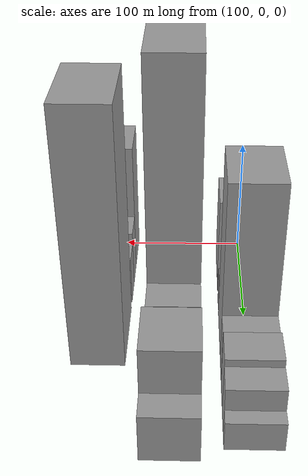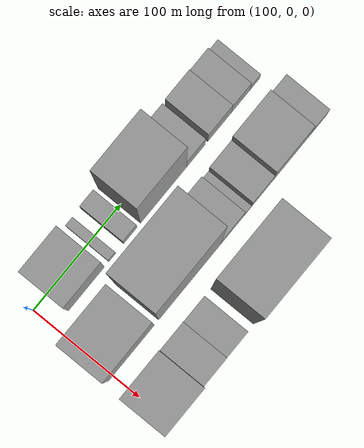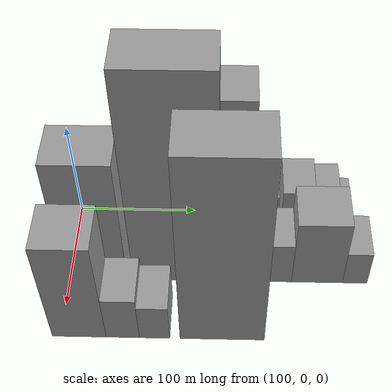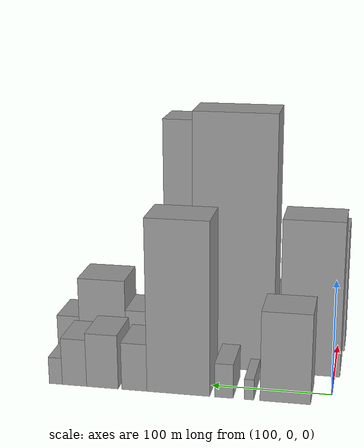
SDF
<sdf version="1.6">
 <world name="default">
  <model name="building_27">
   <static>1</static>
   <pose>100.0000 36.4722 0 0.000000 0.000000 0.000000</pose>
   <link name="link">
    <pose>0 0 39.00 0 0 0</pose>
    <collision name="collision"><geometry><box><size>40.0000 41.1924 78.0000</size></box></geometry></collision>
    <visual name="visual">
     <cast_shadows>0</cast_shadows>
     <geometry><box><size>40.0000 41.1924 78.0000</size></box></geometry>
     <material>
      <script>
       <uri>model://grey_wall/materials/scripts</uri>
       <uri>model://grey_wall/materials/textures</uri>
       <name>vrc/grey_wall</name>
      </script>
     </material>
    </visual>
   </link>
  </model>
  <model name="building_28">
   <static>1</static>
   <pose>100.0000 66.0425 0 0.000000 0.000000 0.000000</pose>
   <link name="link">
    <pose>0 0 9.00 0 0 0</pose>
    <collision name="collision"><geometry><box><size>40.0000 7.9484 18.0000</size></box></geometry></collision>
    <visual name="visual">
     <cast_shadows>0</cast_shadows>
     <geometry><box><size>40.0000 7.9484 18.0000</size></box></geometry>
     <material>
      <script>
       <uri>model://grey_wall/materials/scripts</uri>
       <uri>model://grey_wall/materials/textures</uri>
       <name>vrc/grey_wall</name>
      </script>
     </material>
    </visual>
   </link>
  </model>
  <model name="building_29">
   <static>1</static>
   <pose>100.0000 86.7288 0 0.000000 0.000000 0.000000</pose>
   <link name="link">
    <pose>0 0 15.00 0 0 0</pose>
    <collision name="collision"><geometry><box><size>40.0000 15.4241 30.0000</size></box></geometry></collision>
    <visual name="visual">
     <cast_shadows>0</cast_shadows>
     <geometry><box><size>40.0000 15.4241 30.0000</size></box></geometry>
     <material>
      <script>
       <uri>model://grey_wall/materials/scripts</uri>
       <uri>model://grey_wall/materials/textures</uri>
       <name>vrc/grey_wall</name>
      </script>
     </material>
    </visual>
   </link>
  </model>
  <model name="building_30">
   <static>1</static>
   <pose>100.0000 124.8338 0 0.000000 0.000000 0.000000</pose>
   <link name="link">
    <pose>0 0 75.00 0 0 0</pose>
    <collision name="collision"><geometry><box><size>40.0000 52.7860 150.0000</size></box></geometry></collision>
    <visual name="visual">
     <cast_shadows>0</cast_shadows>
     <geometry><box><size>40.0000 52.7860 150.0000</size></box></geometry>
     <material>
      <script>
       <uri>model://grey_wall/materials/scripts</uri>
       <uri>model://grey_wall/materials/textures</uri>
       <name>vrc/grey_wall</name>
      </script>
     </material>
    </visual>
   </link>
  </model>
  <model name="building_31">
   <static>1</static>
   <pose>100.0000 161.9882 0 0.000000 0.000000 0.000000</pose>
   <link name="link">
    <pose>0 0 21.00 0 0 0</pose>
    <collision name="collision"><geometry><box><size>40.0000 21.5227 42.0000</size></box></geometry></collision>
    <visual name="visual">
     <cast_shadows>0</cast_shadows>
     <geometry><box><size>40.0000 21.5227 42.0000</size></box></geometry>
     <material>
      <script>
       <uri>model://grey_wall/materials/scripts</uri>
       <uri>model://grey_wall/materials/textures</uri>
       <name>vrc/grey_wall</name>
      </script>
     </material>
    </visual>
   </link>
  </model>
  <model name="building_32">
   <static>1</static>
   <pose>100.0000 189.4011 0 0.000000 0.000000 0.000000</pose>
   <link name="link">
    <pose>0 0 24.00 0 0 0</pose>
    <collision name="collision"><geometry><box><size>40.0000 27.3031 48.0000</size></box></geometry></collision>
    <visual name="visual">
     <cast_shadows>0</cast_shadows>
     <geometry><box><size>40.0000 27.3031 48.0000</size></box></geometry>
     <material>
      <script>
       <uri>model://grey_wall/materials/scripts</uri>
       <uri>model://grey_wall/materials/textures</uri>
       <name>vrc/grey_wall</name>
      </script>
     </material>
    </visual>
   </link>
  </model>
  <model name="building_33">
   <static>1</static>
   <pose>100.0000 213.6342 0 0.000000 0.000000 0.000000</pose>
   <link name="link">
    <pose>0 0 21.00 0 0 0</pose>
    <collision name="collision"><geometry><box><size>40.0000 21.1630 42.0000</size></box></geometry></collision>
    <visual name="visual">
     <cast_shadows>0</cast_shadows>
     <geometry><box><size>40.0000 21.1630 42.0000</size></box></geometry>
     <material>
      <script>
       <uri>model://grey_wall/materials/scripts</uri>
       <uri>model://grey_wall/materials/textures</uri>
       <name>vrc/grey_wall</name>
      </script>
     </material>
    </visual>
   </link>
  </model>
  <model name="building_34">
   <static>1</static>
   <pose>100.0000 229.9059 0 0.000000 0.000000 0.000000</pose>
   <link name="link">
    <pose>0 0 12.00 0 0 0</pose>
    <collision name="collision"><geometry><box><size>40.0000 11.3804 24.0000</size></box></geometry></collision>
    <visual name="visual">
     <cast_shadows>0</cast_shadows>
     <geometry><box><size>40.0000 11.3804 24.0000</size></box></geometry>
     <material>
      <script>
       <uri>model://grey_wall/materials/scripts</uri>
       <uri>model://grey_wall/materials/textures</uri>
       <name>vrc/grey_wall</name>
      </script>
     </material>
    </visual>
   </link>
  </model>
  <model name="building_79">
   <static>1</static>
   <pose>155.0000 21.2462 0 0.000000 0.000000 0.000000</pose>
   <link name="link">
    <pose>0 0 69.00 0 0 0</pose>
    <collision name="collision"><geometry><box><size>40.0000 52.1251 138.0000</size></box></geometry></collision>
    <visual name="visual">
     <cast_shadows>0</cast_shadows>
     <geometry><box><size>40.0000 52.1251 138.0000</size></box></geometry>
     <material>
      <script>
       <uri>model://grey_wall/materials/scripts</uri>
       <uri>model://grey_wall/materials/textures</uri>
       <name>vrc/grey_wall</name>
      </script>
     </material>
    </visual>
   </link>
  </model>
  <model name="building_80">
   <static>1</static>
   <pose>155.0000 87.5259 0 0.000000 0.000000 0.000000</pose>
   <link name="link">
    <pose>0 0 112.50 0 0 0</pose>
    <collision name="collision"><geometry><box><size>40.0000 70.4342 225.0000</size></box></geometry></collision>
    <visual name="visual">
     <cast_shadows>0</cast_shadows>
     <geometry><box><size>40.0000 70.4342 225.0000</size></box></geometry>
     <material>
      <script>
       <uri>model://grey_wall/materials/scripts</uri>
       <uri>model://grey_wall/materials/textures</uri>
       <name>vrc/grey_wall</name>
      </script>
     </material>
    </visual>
   </link>
  </model>
  <model name="building_81">
   <static>1</static>
   <pose>155.0000 136.2333 0 0.000000 0.000000 0.000000</pose>
   <link name="link">
    <pose>0 0 24.00 0 0 0</pose>
    <collision name="collision"><geometry><box><size>40.0000 26.9808 48.0000</size></box></geometry></collision>
    <visual name="visual">
     <cast_shadows>0</cast_shadows>
     <geometry><box><size>40.0000 26.9808 48.0000</size></box></geometry>
     <material>
      <script>
       <uri>model://grey_wall/materials/scripts</uri>
       <uri>model://grey_wall/materials/textures</uri>
       <name>vrc/grey_wall</name>
      </script>
     </material>
    </visual>
   </link>
  </model>
  <model name="building_82">
   <static>1</static>
   <pose>155.0000 154.0261 0 0.000000 0.000000 0.000000</pose>
   <link name="link">
    <pose>0 0 9.00 0 0 0</pose>
    <collision name="collision"><geometry><box><size>40.0000 8.6049 18.0000</size></box></geometry></collision>
    <visual name="visual">
     <cast_shadows>0</cast_shadows>
     <geometry><box><size>40.0000 8.6049 18.0000</size></box></geometry>
     <material>
      <script>
       <uri>model://grey_wall/materials/scripts</uri>
       <uri>model://grey_wall/materials/textures</uri>
       <name>vrc/grey_wall</name>
      </script>
     </material>
    </visual>
   </link>
  </model>
  <model name="building_83">
   <static>1</static>
   <pose>155.0000 170.7109 0 0.000000 0.000000 0.000000</pose>
   <link name="link">
    <pose>0 0 24.00 0 0 0</pose>
    <collision name="collision"><geometry><box><size>40.0000 24.7646 48.0000</size></box></geometry></collision>
    <visual name="visual">
     <cast_shadows>0</cast_shadows>
     <geometry><box><size>40.0000 24.7646 48.0000</size></box></geometry>
     <material>
      <script>
       <uri>model://grey_wall/materials/scripts</uri>
       <uri>model://grey_wall/materials/textures</uri>
       <name>vrc/grey_wall</name>
      </script>
     </material>
    </visual>
   </link>
  </model>
  <model name="building_84">
   <static>1</static>
   <pose>155.0000 204.1113 0 0.000000 0.000000 0.000000</pose>
   <link name="link">
    <pose>0 0 37.50 0 0 0</pose>
    <collision name="collision"><geometry><box><size>40.0000 42.0362 75.0000</size></box></geometry></collision>
    <visual name="visual">
     <cast_shadows>0</cast_shadows>
     <geometry><box><size>40.0000 42.0362 75.0000</size></box></geometry>
     <material>
      <script>
       <uri>model://grey_wall/materials/scripts</uri>
       <uri>model://grey_wall/materials/textures</uri>
       <name>vrc/grey_wall</name>
      </script>
     </material>
    </visual>
   </link>
  </model>
  <model name="building_85">
   <static>1</static>
   <pose>155.0000 235.2988 0 0.000000 0.000000 0.000000</pose>
   <link name="link">
    <pose>0 0 19.50 0 0 0</pose>
    <collision name="collision"><geometry><box><size>40.0000 20.3389 39.0000</size></box></geometry></collision>
    <visual name="visual">
     <cast_shadows>0</cast_shadows>
     <geometry><box><size>40.0000 20.3389 39.0000</size></box></geometry>
     <material>
      <script>
       <uri>model://grey_wall/materials/scripts</uri>
       <uri>model://grey_wall/materials/textures</uri>
       <name>vrc/grey_wall</name>
      </script>
     </material>
    </visual>
   </link>
  </model>
  <model name="building_135">
   <static>1</static>
   <pose>210.0000 14.7390 0 0.000000 0.000000 0.000000</pose>
   <link name="link">
    <pose>0 0 57.00 0 0 0</pose>
    <collision name="collision"><geometry><box><size>40.0000 42.2725 114.0000</size></box></geometry></collision>
    <visual name="visual">
     <cast_shadows>0</cast_shadows>
     <geometry><box><size>40.0000 42.2725 114.0000</size></box></geometry>
     <material>
      <script>
       <uri>model://grey_wall/materials/scripts</uri>
       <uri>model://grey_wall/materials/textures</uri>
       <name>vrc/grey_wall</name>
      </script>
     </material>
    </visual>
   </link>
  </model>
  <model name="building_136">
   <static>1</static>
   <pose>210.0000 48.8920 0 0.000000 0.000000 0.000000</pose>
   <link name="link">
    <pose>0 0 25.50 0 0 0</pose>
    <collision name="collision"><geometry><box><size>40.0000 26.0336 51.0000</size></box></geometry></collision>
    <visual name="visual">
     <cast_shadows>0</cast_shadows>
     <geometry><box><size>40.0000 26.0336 51.0000</size></box></geometry>
     <material>
      <script>
       <uri>model://grey_wall/materials/scripts</uri>
       <uri>model://grey_wall/materials/textures</uri>
       <name>vrc/grey_wall</name>
      </script>
     </material>
    </visual>
   </link>
  </model>
  <model name="building_137">
   <static>1</static>
   <pose>210.0000 73.8258 0 0.000000 0.000000 0.000000</pose>
   <link name="link">
    <pose>0 0 21.00 0 0 0</pose>
    <collision name="collision"><geometry><box><size>40.0000 23.8340 42.0000</size></box></geometry></collision>
    <visual name="visual">
     <cast_shadows>0</cast_shadows>
     <geometry><box><size>40.0000 23.8340 42.0000</size></box></geometry>
     <material>
      <script>
       <uri>model://grey_wall/materials/scripts</uri>
       <uri>model://grey_wall/materials/textures</uri>
       <name>vrc/grey_wall</name>
      </script>
     </material>
    </visual>
   </link>
  </model>
  <model name="building_138">
   <static>1</static>
   <pose>210.0000 126.6699 0 0.000000 0.000000 0.000000</pose>
   <link name="link">
    <pose>0 0 103.50 0 0 0</pose>
    <collision name="collision"><geometry><box><size>40.0000 65.8541 207.0000</size></box></geometry></collision>
    <visual name="visual">
     <cast_shadows>0</cast_shadows>
     <geometry><box><size>40.0000 65.8541 207.0000</size></box></geometry>
     <material>
      <script>
       <uri>model://grey_wall/materials/scripts</uri>
       <uri>model://grey_wall/materials/textures</uri>
       <name>vrc/grey_wall</name>
      </script>
     </material>
    </visual>
   </link>
  </model>
 </world>
</sdf>
